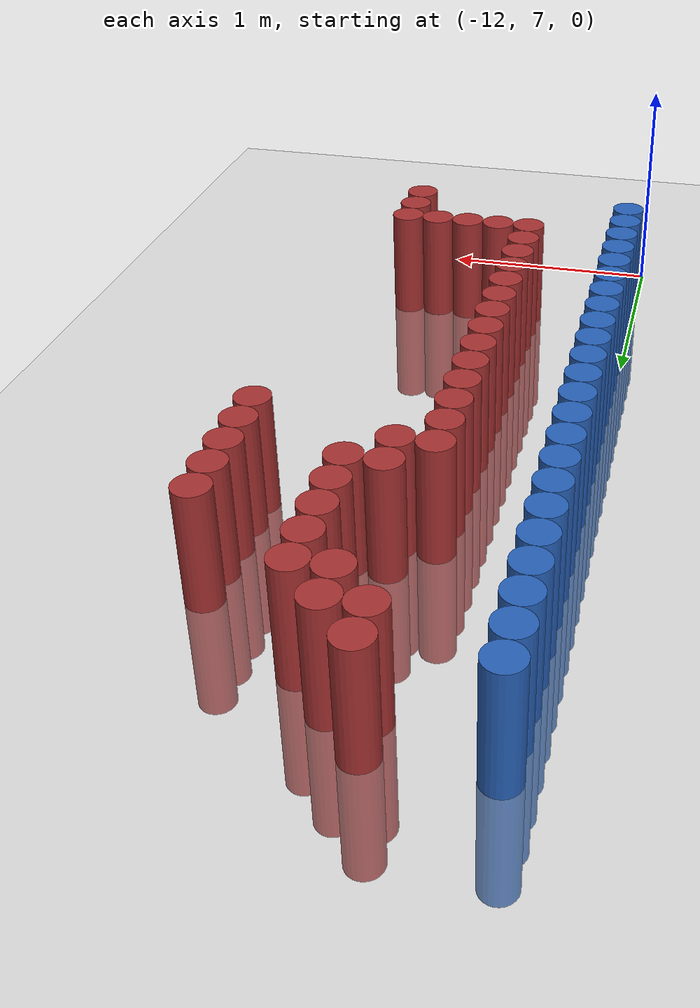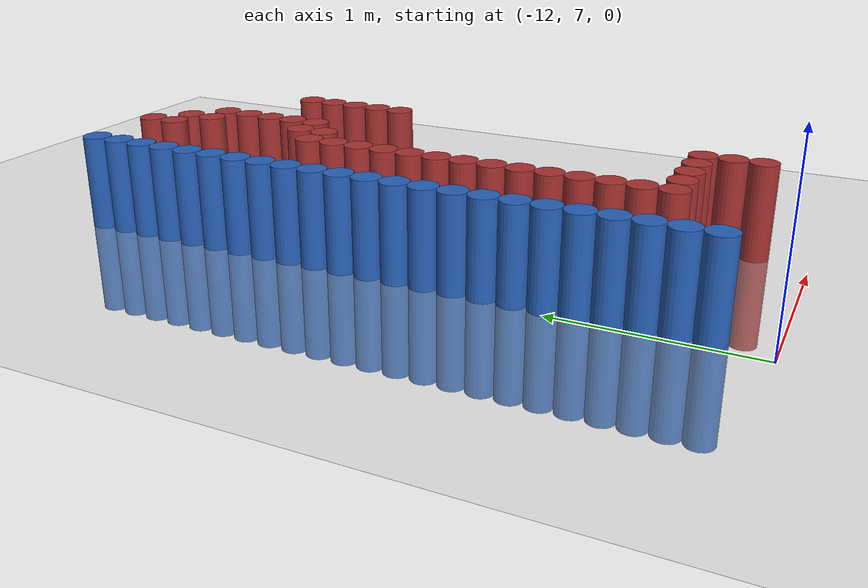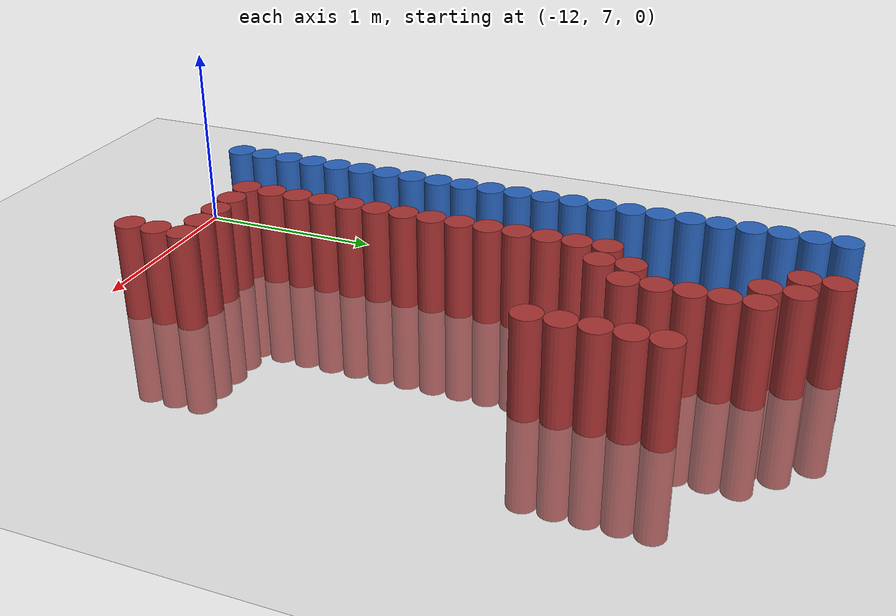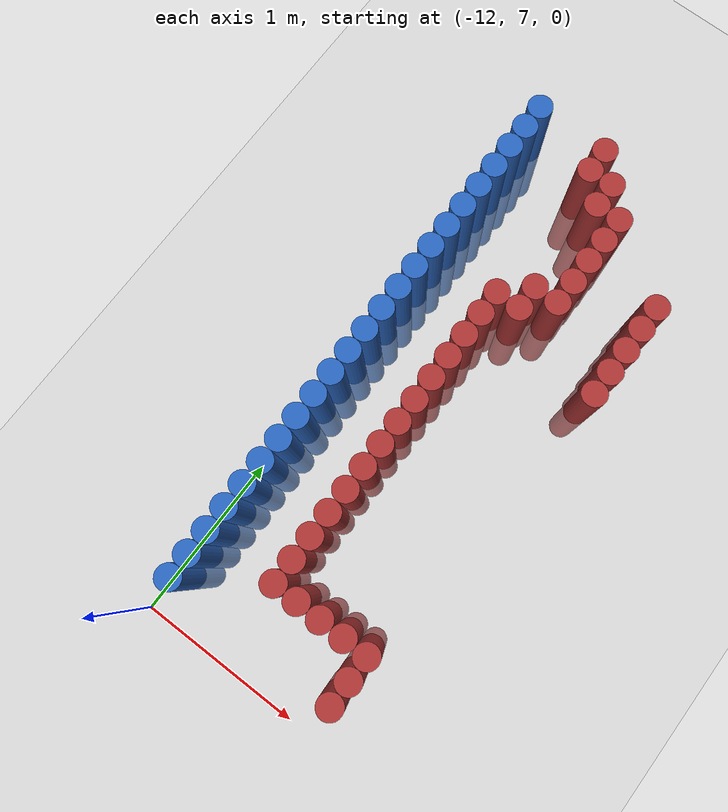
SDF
<sdf version="1.6">
 <world name="default">
  <model name="ground_plane">
   <static>1</static>
   <link name="link">
    <collision name="collision">
     <geometry><plane><normal>0 0 1</normal><size>100 100</size></plane></geometry>
     <surface><friction><ode><mu>100</mu><mu2>50</mu2></ode></friction></surface>
    </collision>
    <visual name="visual">
     <cast_shadows>0</cast_shadows>
     <geometry><plane><normal>0 0 1</normal><size>100 100</size></plane></geometry>
     <material>
      <script><uri>file://media/materials/scripts/gazebo.material</uri><name>Gazebo/Grey</name></script>
     </material>
    </visual>
   </link>
  </model>
  <model name="unit_cylinder_159">
   <static>1</static>
   <pose>-11.925 7.275 0 0 -0 0</pose>
   <link name="link">
    <inertial>
     <mass>1</mass>
     <inertia><ixx>0.145833</ixx><ixy>0</ixy><ixz>0</ixz><iyy>0.145833</iyy><iyz>0</iyz><izz>0.125</izz></inertia>
    </inertial>
    <collision name="collision">
     <geometry><cylinder><radius>0.075</radius><length>1</length></cylinder></geometry>
    </collision>
    <visual name="visual">
     <geometry><cylinder><radius>0.075</radius><length>1</length></cylinder></geometry>
     <material><ambient>0.152 0.379 0.72 1</ambient><diffuse>0.152 0.379 0.72 1</diffuse></material>
     <material>
      <script><name>Gazebo/Grey</name><uri>file://media/materials/scripts/gazebo.material</uri></script>
     </material>
    </visual>
   </link>
  </model>
  <model name="unit_cylinder_160">
   <static>1</static>
   <pose>-11.925 7.425 0 0 -0 0</pose>
   <link name="link">
    <inertial>
     <mass>1</mass>
     <inertia><ixx>0.145833</ixx><ixy>0</ixy><ixz>0</ixz><iyy>0.145833</iyy><iyz>0</iyz><izz>0.125</izz></inertia>
    </inertial>
    <collision name="collision">
     <geometry><cylinder><radius>0.075</radius><length>1</length></cylinder></geometry>
    </collision>
    <visual name="visual">
     <geometry><cylinder><radius>0.075</radius><length>1</length></cylinder></geometry>
     <material><ambient>0.152 0.379 0.72 1</ambient><diffuse>0.152 0.379 0.72 1</diffuse></material>
     <material>
      <script><name>Gazebo/Grey</name><uri>file://media/materials/scripts/gazebo.material</uri></script>
     </material>
    </visual>
   </link>
  </model>
  <model name="unit_cylinder_161">
   <static>1</static>
   <pose>-11.925 7.575 0 0 -0 0</pose>
   <link name="link">
    <inertial>
     <mass>1</mass>
     <inertia><ixx>0.145833</ixx><ixy>0</ixy><ixz>0</ixz><iyy>0.145833</iyy><iyz>0</iyz><izz>0.125</izz></inertia>
    </inertial>
    <collision name="collision">
     <geometry><cylinder><radius>0.075</radius><length>1</length></cylinder></geometry>
    </collision>
    <visual name="visual">
     <geometry><cylinder><radius>0.075</radius><length>1</length></cylinder></geometry>
     <material><ambient>0.152 0.379 0.72 1</ambient><diffuse>0.152 0.379 0.72 1</diffuse></material>
     <material>
      <script><name>Gazebo/Grey</name><uri>file://media/materials/scripts/gazebo.material</uri></script>
     </material>
    </visual>
   </link>
  </model>
  <model name="unit_cylinder_162">
   <static>1</static>
   <pose>-11.925 7.725 0 0 -0 0</pose>
   <link name="link">
    <inertial>
     <mass>1</mass>
     <inertia><ixx>0.145833</ixx><ixy>0</ixy><ixz>0</ixz><iyy>0.145833</iyy><iyz>0</iyz><izz>0.125</izz></inertia>
    </inertial>
    <collision name="collision">
     <geometry><cylinder><radius>0.075</radius><length>1</length></cylinder></geometry>
    </collision>
    <visual name="visual">
     <geometry><cylinder><radius>0.075</radius><length>1</length></cylinder></geometry>
     <material><ambient>0.152 0.379 0.72 1</ambient><diffuse>0.152 0.379 0.72 1</diffuse></material>
     <material>
      <script><name>Gazebo/Grey</name><uri>file://media/materials/scripts/gazebo.material</uri></script>
     </material>
    </visual>
   </link>
  </model>
  <model name="unit_cylinder_163">
   <static>1</static>
   <pose>-11.925 7.875 0 0 -0 0</pose>
   <link name="link">
    <inertial>
     <mass>1</mass>
     <inertia><ixx>0.145833</ixx><ixy>0</ixy><ixz>0</ixz><iyy>0.145833</iyy><iyz>0</iyz><izz>0.125</izz></inertia>
    </inertial>
    <collision name="collision">
     <geometry><cylinder><radius>0.075</radius><length>1</length></cylinder></geometry>
    </collision>
    <visual name="visual">
     <geometry><cylinder><radius>0.075</radius><length>1</length></cylinder></geometry>
     <material><ambient>0.152 0.379 0.72 1</ambient><diffuse>0.152 0.379 0.72 1</diffuse></material>
     <material>
      <script><name>Gazebo/Grey</name><uri>file://media/materials/scripts/gazebo.material</uri></script>
     </material>
    </visual>
   </link>
  </model>
  <model name="unit_cylinder_164">
   <static>1</static>
   <pose>-11.925 8.025 0 0 -0 0</pose>
   <link name="link">
    <inertial>
     <mass>1</mass>
     <inertia><ixx>0.145833</ixx><ixy>0</ixy><ixz>0</ixz><iyy>0.145833</iyy><iyz>0</iyz><izz>0.125</izz></inertia>
    </inertial>
    <collision name="collision">
     <geometry><cylinder><radius>0.075</radius><length>1</length></cylinder></geometry>
    </collision>
    <visual name="visual">
     <geometry><cylinder><radius>0.075</radius><length>1</length></cylinder></geometry>
     <material><ambient>0.152 0.379 0.72 1</ambient><diffuse>0.152 0.379 0.72 1</diffuse></material>
     <material>
      <script><name>Gazebo/Grey</name><uri>file://media/materials/scripts/gazebo.material</uri></script>
     </material>
    </visual>
   </link>
  </model>
  <model name="unit_cylinder_165">
   <static>1</static>
   <pose>-11.925 8.175 0 0 -0 0</pose>
   <link name="link">
    <inertial>
     <mass>1</mass>
     <inertia><ixx>0.145833</ixx><ixy>0</ixy><ixz>0</ixz><iyy>0.145833</iyy><iyz>0</iyz><izz>0.125</izz></inertia>
    </inertial>
    <collision name="collision">
     <geometry><cylinder><radius>0.075</radius><length>1</length></cylinder></geometry>
    </collision>
    <visual name="visual">
     <geometry><cylinder><radius>0.075</radius><length>1</length></cylinder></geometry>
     <material><ambient>0.152 0.379 0.72 1</ambient><diffuse>0.152 0.379 0.72 1</diffuse></material>
     <material>
      <script><name>Gazebo/Grey</name><uri>file://media/materials/scripts/gazebo.material</uri></script>
     </material>
    </visual>
   </link>
  </model>
  <model name="unit_cylinder_166">
   <static>1</static>
   <pose>-11.925 8.325 0 0 -0 0</pose>
   <link name="link">
    <inertial>
     <mass>1</mass>
     <inertia><ixx>0.145833</ixx><ixy>0</ixy><ixz>0</ixz><iyy>0.145833</iyy><iyz>0</iyz><izz>0.125</izz></inertia>
    </inertial>
    <collision name="collision">
     <geometry><cylinder><radius>0.075</radius><length>1</length></cylinder></geometry>
    </collision>
    <visual name="visual">
     <geometry><cylinder><radius>0.075</radius><length>1</length></cylinder></geometry>
     <material><ambient>0.152 0.379 0.72 1</ambient><diffuse>0.152 0.379 0.72 1</diffuse></material>
     <material>
      <script><name>Gazebo/Grey</name><uri>file://media/materials/scripts/gazebo.material</uri></script>
     </material>
    </visual>
   </link>
  </model>
  <model name="unit_cylinder_167">
   <static>1</static>
   <pose>-11.925 8.475 0 0 -0 0</pose>
   <link name="link">
    <inertial>
     <mass>1</mass>
     <inertia><ixx>0.145833</ixx><ixy>0</ixy><ixz>0</ixz><iyy>0.145833</iyy><iyz>0</iyz><izz>0.125</izz></inertia>
    </inertial>
    <collision name="collision">
     <geometry><cylinder><radius>0.075</radius><length>1</length></cylinder></geometry>
    </collision>
    <visual name="visual">
     <geometry><cylinder><radius>0.075</radius><length>1</length></cylinder></geometry>
     <material><ambient>0.152 0.379 0.72 1</ambient><diffuse>0.152 0.379 0.72 1</diffuse></material>
     <material>
      <script><name>Gazebo/Grey</name><uri>file://media/materials/scripts/gazebo.material</uri></script>
     </material>
    </visual>
   </link>
  </model>
  <model name="unit_cylinder_168">
   <static>1</static>
   <pose>-11.925 8.625 0 0 -0 0</pose>
   <link name="link">
    <inertial>
     <mass>1</mass>
     <inertia><ixx>0.145833</ixx><ixy>0</ixy><ixz>0</ixz><iyy>0.145833</iyy><iyz>0</iyz><izz>0.125</izz></inertia>
    </inertial>
    <collision name="collision">
     <geometry><cylinder><radius>0.075</radius><length>1</length></cylinder></geometry>
    </collision>
    <visual name="visual">
     <geometry><cylinder><radius>0.075</radius><length>1</length></cylinder></geometry>
     <material><ambient>0.152 0.379 0.72 1</ambient><diffuse>0.152 0.379 0.72 1</diffuse></material>
     <material>
      <script><name>Gazebo/Grey</name><uri>file://media/materials/scripts/gazebo.material</uri></script>
     </material>
    </visual>
   </link>
  </model>
  <model name="unit_cylinder_169">
   <static>1</static>
   <pose>-11.925 8.775 0 0 -0 0</pose>
   <link name="link">
    <inertial>
     <mass>1</mass>
     <inertia><ixx>0.145833</ixx><ixy>0</ixy><ixz>0</ixz><iyy>0.145833</iyy><iyz>0</iyz><izz>0.125</izz></inertia>
    </inertial>
    <collision name="collision">
     <geometry><cylinder><radius>0.075</radius><length>1</length></cylinder></geometry>
    </collision>
    <visual name="visual">
     <geometry><cylinder><radius>0.075</radius><length>1</length></cylinder></geometry>
     <material><ambient>0.152 0.379 0.72 1</ambient><diffuse>0.152 0.379 0.72 1</diffuse></material>
     <material>
      <script><name>Gazebo/Grey</name><uri>file://media/materials/scripts/gazebo.material</uri></script>
     </material>
    </visual>
   </link>
  </model>
  <model name="unit_cylinder_170">
   <static>1</static>
   <pose>-11.925 8.925 0 0 -0 0</pose>
   <link name="link">
    <inertial>
     <mass>1</mass>
     <inertia><ixx>0.145833</ixx><ixy>0</ixy><ixz>0</ixz><iyy>0.145833</iyy><iyz>0</iyz><izz>0.125</izz></inertia>
    </inertial>
    <collision name="collision">
     <geometry><cylinder><radius>0.075</radius><length>1</length></cylinder></geometry>
    </collision>
    <visual name="visual">
     <geometry><cylinder><radius>0.075</radius><length>1</length></cylinder></geometry>
     <material><ambient>0.152 0.379 0.72 1</ambient><diffuse>0.152 0.379 0.72 1</diffuse></material>
     <material>
      <script><name>Gazebo/Grey</name><uri>file://media/materials/scripts/gazebo.material</uri></script>
     </material>
    </visual>
   </link>
  </model>
  <model name="unit_cylinder_171">
   <static>1</static>
   <pose>-11.925 9.075 0 0 -0 0</pose>
   <link name="link">
    <inertial>
     <mass>1</mass>
     <inertia><ixx>0.145833</ixx><ixy>0</ixy><ixz>0</ixz><iyy>0.145833</iyy><iyz>0</iyz><izz>0.125</izz></inertia>
    </inertial>
    <collision name="collision">
     <geometry><cylinder><radius>0.075</radius><length>1</length></cylinder></geometry>
    </collision>
    <visual name="visual">
     <geometry><cylinder><radius>0.075</radius><length>1</length></cylinder></geometry>
     <material><ambient>0.152 0.379 0.72 1</ambient><diffuse>0.152 0.379 0.72 1</diffuse></material>
     <material>
      <script><name>Gazebo/Grey</name><uri>file://media/materials/scripts/gazebo.material</uri></script>
     </material>
    </visual>
   </link>
  </model>
  <model name="unit_cylinder_172">
   <static>1</static>
   <pose>-11.925 9.225 0 0 -0 0</pose>
   <link name="link">
    <inertial>
     <mass>1</mass>
     <inertia><ixx>0.145833</ixx><ixy>0</ixy><ixz>0</ixz><iyy>0.145833</iyy><iyz>0</iyz><izz>0.125</izz></inertia>
    </inertial>
    <collision name="collision">
     <geometry><cylinder><radius>0.075</radius><length>1</length></cylinder></geometry>
    </collision>
    <visual name="visual">
     <geometry><cylinder><radius>0.075</radius><length>1</length></cylinder></geometry>
     <material><ambient>0.152 0.379 0.72 1</ambient><diffuse>0.152 0.379 0.72 1</diffuse></material>
     <material>
      <script><name>Gazebo/Grey</name><uri>file://media/materials/scripts/gazebo.material</uri></script>
     </material>
    </visual>
   </link>
  </model>
  <model name="unit_cylinder_173">
   <static>1</static>
   <pose>-11.925 9.375 0 0 -0 0</pose>
   <link name="link">
    <inertial>
     <mass>1</mass>
     <inertia><ixx>0.145833</ixx><ixy>0</ixy><ixz>0</ixz><iyy>0.145833</iyy><iyz>0</iyz><izz>0.125</izz></inertia>
    </inertial>
    <collision name="collision">
     <geometry><cylinder><radius>0.075</radius><length>1</length></cylinder></geometry>
    </collision>
    <visual name="visual">
     <geometry><cylinder><radius>0.075</radius><length>1</length></cylinder></geometry>
     <material><ambient>0.152 0.379 0.72 1</ambient><diffuse>0.152 0.379 0.72 1</diffuse></material>
     <material>
      <script><name>Gazebo/Grey</name><uri>file://media/materials/scripts/gazebo.material</uri></script>
     </material>
    </visual>
   </link>
  </model>
  <model name="unit_cylinder_174">
   <static>1</static>
   <pose>-11.925 9.525 0 0 -0 0</pose>
   <link name="link">
    <inertial>
     <mass>1</mass>
     <inertia><ixx>0.145833</ixx><ixy>0</ixy><ixz>0</ixz><iyy>0.145833</iyy><iyz>0</iyz><izz>0.125</izz></inertia>
    </inertial>
    <collision name="collision">
     <geometry><cylinder><radius>0.075</radius><length>1</length></cylinder></geometry>
    </collision>
    <visual name="visual">
     <geometry><cylinder><radius>0.075</radius><length>1</length></cylinder></geometry>
     <material><ambient>0.152 0.379 0.72 1</ambient><diffuse>0.152 0.379 0.72 1</diffuse></material>
     <material>
      <script><name>Gazebo/Grey</name><uri>file://media/materials/scripts/gazebo.material</uri></script>
     </material>
    </visual>
   </link>
  </model>
  <model name="unit_cylinder_175">
   <static>1</static>
   <pose>-11.925 9.675 0 0 -0 0</pose>
   <link name="link">
    <inertial>
     <mass>1</mass>
     <inertia><ixx>0.145833</ixx><ixy>0</ixy><ixz>0</ixz><iyy>0.145833</iyy><iyz>0</iyz><izz>0.125</izz></inertia>
    </inertial>
    <collision name="collision">
     <geometry><cylinder><radius>0.075</radius><length>1</length></cylinder></geometry>
    </collision>
    <visual name="visual">
     <geometry><cylinder><radius>0.075</radius><length>1</length></cylinder></geometry>
     <material><ambient>0.152 0.379 0.72 1</ambient><diffuse>0.152 0.379 0.72 1</diffuse></material>
     <material>
      <script><name>Gazebo/Grey</name><uri>file://media/materials/scripts/gazebo.material</uri></script>
     </material>
    </visual>
   </link>
  </model>
  <model name="unit_cylinder_176">
   <static>1</static>
   <pose>-11.925 9.825 0 0 -0 0</pose>
   <link name="link">
    <inertial>
     <mass>1</mass>
     <inertia><ixx>0.145833</ixx><ixy>0</ixy><ixz>0</ixz><iyy>0.145833</iyy><iyz>0</iyz><izz>0.125</izz></inertia>
    </inertial>
    <collision name="collision">
     <geometry><cylinder><radius>0.075</radius><length>1</length></cylinder></geometry>
    </collision>
    <visual name="visual">
     <geometry><cylinder><radius>0.075</radius><length>1</length></cylinder></geometry>
     <material><ambient>0.152 0.379 0.72 1</ambient><diffuse>0.152 0.379 0.72 1</diffuse></material>
     <material>
      <script><name>Gazebo/Grey</name><uri>file://media/materials/scripts/gazebo.material</uri></script>
     </material>
    </visual>
   </link>
  </model>
  <model name="unit_cylinder_177">
   <static>1</static>
   <pose>-11.925 9.975 0 0 -0 0</pose>
   <link name="link">
    <inertial>
     <mass>1</mass>
     <inertia><ixx>0.145833</ixx><ixy>0</ixy><ixz>0</ixz><iyy>0.145833</iyy><iyz>0</iyz><izz>0.125</izz></inertia>
    </inertial>
    <collision name="collision">
     <geometry><cylinder><radius>0.075</radius><length>1</length></cylinder></geometry>
    </collision>
    <visual name="visual">
     <geometry><cylinder><radius>0.075</radius><length>1</length></cylinder></geometry>
     <material><ambient>0.152 0.379 0.72 1</ambient><diffuse>0.152 0.379 0.72 1</diffuse></material>
     <material>
      <script><name>Gazebo/Grey</name><uri>file://media/materials/scripts/gazebo.material</uri></script>
     </material>
    </visual>
   </link>
  </model>
  <model name="unit_cylinder_178">
   <static>1</static>
   <pose>-11.925 10.125 0 0 -0 0</pose>
   <link name="link">
    <inertial>
     <mass>1</mass>
     <inertia><ixx>0.145833</ixx><ixy>0</ixy><ixz>0</ixz><iyy>0.145833</iyy><iyz>0</iyz><izz>0.125</izz></inertia>
    </inertial>
    <collision name="collision">
     <geometry><cylinder><radius>0.075</radius><length>1</length></cylinder></geometry>
    </collision>
    <visual name="visual">
     <geometry><cylinder><radius>0.075</radius><length>1</length></cylinder></geometry>
     <material><ambient>0.152 0.379 0.72 1</ambient><diffuse>0.152 0.379 0.72 1</diffuse></material>
     <material>
      <script><name>Gazebo/Grey</name><uri>file://media/materials/scripts/gazebo.material</uri></script>
     </material>
    </visual>
   </link>
  </model>
  <model name="unit_cylinder_179">
   <static>1</static>
   <pose>-11.925 10.275 0 0 -0 0</pose>
   <link name="link">
    <inertial>
     <mass>1</mass>
     <inertia><ixx>0.145833</ixx><ixy>0</ixy><ixz>0</ixz><iyy>0.145833</iyy><iyz>0</iyz><izz>0.125</izz></inertia>
    </inertial>
    <collision name="collision">
     <geometry><cylinder><radius>0.075</radius><length>1</length></cylinder></geometry>
    </collision>
    <visual name="visual">
     <geometry><cylinder><radius>0.075</radius><length>1</length></cylinder></geometry>
     <material><ambient>0.152 0.379 0.72 1</ambient><diffuse>0.152 0.379 0.72 1</diffuse></material>
     <material>
      <script><name>Gazebo/Grey</name><uri>file://media/materials/scripts/gazebo.material</uri></script>
     </material>
    </visual>
   </link>
  </model>
  <model name="unit_cylinder_180">
   <static>1</static>
   <pose>-11.925 10.425 0 0 -0 0</pose>
   <link name="link">
    <inertial>
     <mass>1</mass>
     <inertia><ixx>0.145833</ixx><ixy>0</ixy><ixz>0</ixz><iyy>0.145833</iyy><iyz>0</iyz><izz>0.125</izz></inertia>
    </inertial>
    <collision name="collision">
     <geometry><cylinder><radius>0.075</radius><length>1</length></cylinder></geometry>
    </collision>
    <visual name="visual">
     <geometry><cylinder><radius>0.075</radius><length>1</length></cylinder></geometry>
     <material><ambient>0.152 0.379 0.72 1</ambient><diffuse>0.152 0.379 0.72 1</diffuse></material>
     <material>
      <script><name>Gazebo/Grey</name><uri>file://media/materials/scripts/gazebo.material</uri></script>
     </material>
    </visual>
   </link>
  </model>
  <model name="unit_cylinder_181">
   <static>1</static>
   <pose>-11.925 10.575 0 0 -0 0</pose>
   <link name="link">
    <inertial>
     <mass>1</mass>
     <inertia><ixx>0.145833</ixx><ixy>0</ixy><ixz>0</ixz><iyy>0.145833</iyy><iyz>0</iyz><izz>0.125</izz></inertia>
    </inertial>
    <collision name="collision">
     <geometry><cylinder><radius>0.075</radius><length>1</length></cylinder></geometry>
    </collision>
    <visual name="visual">
     <geometry><cylinder><radius>0.075</radius><length>1</length></cylinder></geometry>
     <material><ambient>0.152 0.379 0.72 1</ambient><diffuse>0.152 0.379 0.72 1</diffuse></material>
     <material>
      <script><name>Gazebo/Grey</name><uri>file://media/materials/scripts/gazebo.material</uri></script>
     </material>
    </visual>
   </link>
  </model>
  <model name="unit_cylinder_250">
   <static>1</static>
   <pose>-11.475 7.575 0 0 -0 0</pose>
   <link name="link">
    <inertial>
     <mass>1</mass>
     <inertia><ixx>0.145833</ixx><ixy>0</ixy><ixz>0</ixz><iyy>0.145833</iyy><iyz>0</iyz><izz>0.125</izz></inertia>
    </inertial>
    <collision name="collision">
     <geometry><cylinder><radius>0.075</radius><length>1</length></cylinder></geometry>
    </collision>
    <visual name="visual">
     <geometry><cylinder><radius>0.075</radius><length>1</length></cylinder></geometry>
     <material><ambient>0.648 0.192 0.192 1</ambient><diffuse>0.648 0.192 0.192 1</diffuse></material>
     <material>
      <script><name>Gazebo/Grey</name><uri>file://media/materials/scripts/gazebo.material</uri></script>
     </material>
    </visual>
   </link>
  </model>
  <model name="unit_cylinder_251">
   <static>1</static>
   <pose>-11.475 7.725 0 0 -0 0</pose>
   <link name="link">
    <inertial>
     <mass>1</mass>
     <inertia><ixx>0.145833</ixx><ixy>0</ixy><ixz>0</ixz><iyy>0.145833</iyy><iyz>0</iyz><izz>0.125</izz></inertia>
    </inertial>
    <collision name="collision">
     <geometry><cylinder><radius>0.075</radius><length>1</length></cylinder></geometry>
    </collision>
    <visual name="visual">
     <geometry><cylinder><radius>0.075</radius><length>1</length></cylinder></geometry>
     <material><ambient>0.648 0.192 0.192 1</ambient><diffuse>0.648 0.192 0.192 1</diffuse></material>
     <material>
      <script><name>Gazebo/Grey</name><uri>file://media/materials/scripts/gazebo.material</uri></script>
     </material>
    </visual>
   </link>
  </model>
  <model name="unit_cylinder_252">
   <static>1</static>
   <pose>-11.475 7.875 0 0 -0 0</pose>
   <link name="link">
    <inertial>
     <mass>1</mass>
     <inertia><ixx>0.145833</ixx><ixy>0</ixy><ixz>0</ixz><iyy>0.145833</iyy><iyz>0</iyz><izz>0.125</izz></inertia>
    </inertial>
    <collision name="collision">
     <geometry><cylinder><radius>0.075</radius><length>1</length></cylinder></geometry>
    </collision>
    <visual name="visual">
     <geometry><cylinder><radius>0.075</radius><length>1</length></cylinder></geometry>
     <material><ambient>0.648 0.192 0.192 1</ambient><diffuse>0.648 0.192 0.192 1</diffuse></material>
     <material>
      <script><name>Gazebo/Grey</name><uri>file://media/materials/scripts/gazebo.material</uri></script>
     </material>
    </visual>
   </link>
  </model>
  <model name="unit_cylinder_253">
   <static>1</static>
   <pose>-11.475 8.025 0 0 -0 0</pose>
   <link name="link">
    <inertial>
     <mass>1</mass>
     <inertia><ixx>0.145833</ixx><ixy>0</ixy><ixz>0</ixz><iyy>0.145833</iyy><iyz>0</iyz><izz>0.125</izz></inertia>
    </inertial>
    <collision name="collision">
     <geometry><cylinder><radius>0.075</radius><length>1</length></cylinder></geometry>
    </collision>
    <visual name="visual">
     <geometry><cylinder><radius>0.075</radius><length>1</length></cylinder></geometry>
     <material><ambient>0.648 0.192 0.192 1</ambient><diffuse>0.648 0.192 0.192 1</diffuse></material>
     <material>
      <script><name>Gazebo/Grey</name><uri>file://media/materials/scripts/gazebo.material</uri></script>
     </material>
    </visual>
   </link>
  </model>
  <model name="unit_cylinder_254">
   <static>1</static>
   <pose>-11.475 8.175 0 0 -0 0</pose>
   <link name="link">
    <inertial>
     <mass>1</mass>
     <inertia><ixx>0.145833</ixx><ixy>0</ixy><ixz>0</ixz><iyy>0.145833</iyy><iyz>0</iyz><izz>0.125</izz></inertia>
    </inertial>
    <collision name="collision">
     <geometry><cylinder><radius>0.075</radius><length>1</length></cylinder></geometry>
    </collision>
    <visual name="visual">
     <geometry><cylinder><radius>0.075</radius><length>1</length></cylinder></geometry>
     <material><ambient>0.648 0.192 0.192 1</ambient><diffuse>0.648 0.192 0.192 1</diffuse></material>
     <material>
      <script><name>Gazebo/Grey</name><uri>file://media/materials/scripts/gazebo.material</uri></script>
     </material>
    </visual>
   </link>
  </model>
  <model name="unit_cylinder_255">
   <static>1</static>
   <pose>-11.475 8.325 0 0 -0 0</pose>
   <link name="link">
    <inertial>
     <mass>1</mass>
     <inertia><ixx>0.145833</ixx><ixy>0</ixy><ixz>0</ixz><iyy>0.145833</iyy><iyz>0</iyz><izz>0.125</izz></inertia>
    </inertial>
    <collision name="collision">
     <geometry><cylinder><radius>0.075</radius><length>1</length></cylinder></geometry>
    </collision>
    <visual name="visual">
     <geometry><cylinder><radius>0.075</radius><length>1</length></cylinder></geometry>
     <material><ambient>0.648 0.192 0.192 1</ambient><diffuse>0.648 0.192 0.192 1</diffuse></material>
     <material>
      <script><name>Gazebo/Grey</name><uri>file://media/materials/scripts/gazebo.material</uri></script>
     </material>
    </visual>
   </link>
  </model>
  <model name="unit_cylinder_256">
   <static>1</static>
   <pose>-11.475 8.475 0 0 -0 0</pose>
   <link name="link">
    <inertial>
     <mass>1</mass>
     <inertia><ixx>0.145833</ixx><ixy>0</ixy><ixz>0</ixz><iyy>0.145833</iyy><iyz>0</iyz><izz>0.125</izz></inertia>
    </inertial>
    <collision name="collision">
     <geometry><cylinder><radius>0.075</radius><length>1</length></cylinder></geometry>
    </collision>
    <visual name="visual">
     <geometry><cylinder><radius>0.075</radius><length>1</length></cylinder></geometry>
     <material><ambient>0.648 0.192 0.192 1</ambient><diffuse>0.648 0.192 0.192 1</diffuse></material>
     <material>
      <script><name>Gazebo/Grey</name><uri>file://media/materials/scripts/gazebo.material</uri></script>
     </material>
    </visual>
   </link>
  </model>
  <model name="unit_cylinder_257">
   <static>1</static>
   <pose>-11.475 8.625 0 0 -0 0</pose>
   <link name="link">
    <inertial>
     <mass>1</mass>
     <inertia><ixx>0.145833</ixx><ixy>0</ixy><ixz>0</ixz><iyy>0.145833</iyy><iyz>0</iyz><izz>0.125</izz></inertia>
    </inertial>
    <collision name="collision">
     <geometry><cylinder><radius>0.075</radius><length>1</length></cylinder></geometry>
    </collision>
    <visual name="visual">
     <geometry><cylinder><radius>0.075</radius><length>1</length></cylinder></geometry>
     <material><ambient>0.648 0.192 0.192 1</ambient><diffuse>0.648 0.192 0.192 1</diffuse></material>
     <material>
      <script><name>Gazebo/Grey</name><uri>file://media/materials/scripts/gazebo.material</uri></script>
     </material>
    </visual>
   </link>
  </model>
  <model name="unit_cylinder_258">
   <static>1</static>
   <pose>-11.475 8.775 0 0 -0 0</pose>
   <link name="link">
    <inertial>
     <mass>1</mass>
     <inertia><ixx>0.145833</ixx><ixy>0</ixy><ixz>0</ixz><iyy>0.145833</iyy><iyz>0</iyz><izz>0.125</izz></inertia>
    </inertial>
    <collision name="collision">
     <geometry><cylinder><radius>0.075</radius><length>1</length></cylinder></geometry>
    </collision>
    <visual name="visual">
     <geometry><cylinder><radius>0.075</radius><length>1</length></cylinder></geometry>
     <material><ambient>0.648 0.192 0.192 1</ambient><diffuse>0.648 0.192 0.192 1</diffuse></material>
     <material>
      <script><name>Gazebo/Grey</name><uri>file://media/materials/scripts/gazebo.material</uri></script>
     </material>
    </visual>
   </link>
  </model>
  <model name="unit_cylinder_259">
   <static>1</static>
   <pose>-11.475 8.925 0 0 -0 0</pose>
   <link name="link">
    <inertial>
     <mass>1</mass>
     <inertia><ixx>0.145833</ixx><ixy>0</ixy><ixz>0</ixz><iyy>0.145833</iyy><iyz>0</iyz><izz>0.125</izz></inertia>
    </inertial>
    <collision name="collision">
     <geometry><cylinder><radius>0.075</radius><length>1</length></cylinder></geometry>
    </collision>
    <visual name="visual">
     <geometry><cylinder><radius>0.075</radius><length>1</length></cylinder></geometry>
     <material><ambient>0.648 0.192 0.192 1</ambient><diffuse>0.648 0.192 0.192 1</diffuse></material>
     <material>
      <script><name>Gazebo/Grey</name><uri>file://media/materials/scripts/gazebo.material</uri></script>
     </material>
    </visual>
   </link>
  </model>
  <model name="unit_cylinder_260">
   <static>1</static>
   <pose>-11.475 9.075 0 0 -0 0</pose>
   <link name="link">
    <inertial>
     <mass>1</mass>
     <inertia><ixx>0.145833</ixx><ixy>0</ixy><ixz>0</ixz><iyy>0.145833</iyy><iyz>0</iyz><izz>0.125</izz></inertia>
    </inertial>
    <collision name="collision">
     <geometry><cylinder><radius>0.075</radius><length>1</length></cylinder></geometry>
    </collision>
    <visual name="visual">
     <geometry><cylinder><radius>0.075</radius><length>1</length></cylinder></geometry>
     <material><ambient>0.648 0.192 0.192 1</ambient><diffuse>0.648 0.192 0.192 1</diffuse></material>
     <material>
      <script><name>Gazebo/Grey</name><uri>file://media/materials/scripts/gazebo.material</uri></script>
     </material>
    </visual>
   </link>
  </model>
  <model name="unit_cylinder_261">
   <static>1</static>
   <pose>-11.475 9.225 0 0 -0 0</pose>
   <link name="link">
    <inertial>
     <mass>1</mass>
     <inertia><ixx>0.145833</ixx><ixy>0</ixy><ixz>0</ixz><iyy>0.145833</iyy><iyz>0</iyz><izz>0.125</izz></inertia>
    </inertial>
    <collision name="collision">
     <geometry><cylinder><radius>0.075</radius><length>1</length></cylinder></geometry>
    </collision>
    <visual name="visual">
     <geometry><cylinder><radius>0.075</radius><length>1</length></cylinder></geometry>
     <material><ambient>0.648 0.192 0.192 1</ambient><diffuse>0.648 0.192 0.192 1</diffuse></material>
     <material>
      <script><name>Gazebo/Grey</name><uri>file://media/materials/scripts/gazebo.material</uri></script>
     </material>
    </visual>
   </link>
  </model>
  <model name="unit_cylinder_262">
   <static>1</static>
   <pose>-11.475 9.375 0 0 -0 0</pose>
   <link name="link">
    <inertial>
     <mass>1</mass>
     <inertia><ixx>0.145833</ixx><ixy>0</ixy><ixz>0</ixz><iyy>0.145833</iyy><iyz>0</iyz><izz>0.125</izz></inertia>
    </inertial>
    <collision name="collision">
     <geometry><cylinder><radius>0.075</radius><length>1</length></cylinder></geometry>
    </collision>
    <visual name="visual">
     <geometry><cylinder><radius>0.075</radius><length>1</length></cylinder></geometry>
     <material><ambient>0.648 0.192 0.192 1</ambient><diffuse>0.648 0.192 0.192 1</diffuse></material>
     <material>
      <script><name>Gazebo/Grey</name><uri>file://media/materials/scripts/gazebo.material</uri></script>
     </material>
    </visual>
   </link>
  </model>
  <model name="unit_cylinder_263">
   <static>1</static>
   <pose>-11.475 9.525 0 0 -0 0</pose>
   <link name="link">
    <inertial>
     <mass>1</mass>
     <inertia><ixx>0.145833</ixx><ixy>0</ixy><ixz>0</ixz><iyy>0.145833</iyy><iyz>0</iyz><izz>0.125</izz></inertia>
    </inertial>
    <collision name="collision">
     <geometry><cylinder><radius>0.075</radius><length>1</length></cylinder></geometry>
    </collision>
    <visual name="visual">
     <geometry><cylinder><radius>0.075</radius><length>1</length></cylinder></geometry>
     <material><ambient>0.648 0.192 0.192 1</ambient><diffuse>0.648 0.192 0.192 1</diffuse></material>
     <material>
      <script><name>Gazebo/Grey</name><uri>file://media/materials/scripts/gazebo.material</uri></script>
     </material>
    </visual>
   </link>
  </model>
  <model name="unit_cylinder_264">
   <static>1</static>
   <pose>-11.475 10.425 0 0 -0 0</pose>
   <link name="link">
    <inertial>
     <mass>1</mass>
     <inertia><ixx>0.145833</ixx><ixy>0</ixy><ixz>0</ixz><iyy>0.145833</iyy><iyz>0</iyz><izz>0.125</izz></inertia>
    </inertial>
    <collision name="collision">
     <geometry><cylinder><radius>0.075</radius><length>1</length></cylinder></geometry>
    </collision>
    <visual name="visual">
     <geometry><cylinder><radius>0.075</radius><length>1</length></cylinder></geometry>
     <material><ambient>0.648 0.192 0.192 1</ambient><diffuse>0.648 0.192 0.192 1</diffuse></material>
     <material>
      <script><name>Gazebo/Grey</name><uri>file://media/materials/scripts/gazebo.material</uri></script>
     </material>
    </visual>
   </link>
  </model>
  <model name="unit_cylinder_265">
   <static>1</static>
   <pose>-11.475 10.575 0 0 -0 0</pose>
   <link name="link">
    <inertial>
     <mass>1</mass>
     <inertia><ixx>0.145833</ixx><ixy>0</ixy><ixz>0</ixz><iyy>0.145833</iyy><iyz>0</iyz><izz>0.125</izz></inertia>
    </inertial>
    <collision name="collision">
     <geometry><cylinder><radius>0.075</radius><length>1</length></cylinder></geometry>
    </collision>
    <visual name="visual">
     <geometry><cylinder><radius>0.075</radius><length>1</length></cylinder></geometry>
     <material><ambient>0.648 0.192 0.192 1</ambient><diffuse>0.648 0.192 0.192 1</diffuse></material>
     <material>
      <script><name>Gazebo/Grey</name><uri>file://media/materials/scripts/gazebo.material</uri></script>
     </material>
    </visual>
   </link>
  </model>
  <model name="unit_cylinder_279">
   <static>1</static>
   <pose>-11.325 7.575 0 0 -0 0</pose>
   <link name="link">
    <inertial>
     <mass>1</mass>
     <inertia><ixx>0.145833</ixx><ixy>0</ixy><ixz>0</ixz><iyy>0.145833</iyy><iyz>0</iyz><izz>0.125</izz></inertia>
    </inertial>
    <collision name="collision">
     <geometry><cylinder><radius>0.075</radius><length>1</length></cylinder></geometry>
    </collision>
    <visual name="visual">
     <geometry><cylinder><radius>0.075</radius><length>1</length></cylinder></geometry>
     <material><ambient>0.648 0.192 0.192 1</ambient><diffuse>0.648 0.192 0.192 1</diffuse></material>
     <material>
      <script><name>Gazebo/Grey</name><uri>file://media/materials/scripts/gazebo.material</uri></script>
     </material>
    </visual>
   </link>
  </model>
  <model name="unit_cylinder_280">
   <static>1</static>
   <pose>-11.325 9.525 0 0 -0 0</pose>
   <link name="link">
    <inertial>
     <mass>1</mass>
     <inertia><ixx>0.145833</ixx><ixy>0</ixy><ixz>0</ixz><iyy>0.145833</iyy><iyz>0</iyz><izz>0.125</izz></inertia>
    </inertial>
    <collision name="collision">
     <geometry><cylinder><radius>0.075</radius><length>1</length></cylinder></geometry>
    </collision>
    <visual name="visual">
     <geometry><cylinder><radius>0.075</radius><length>1</length></cylinder></geometry>
     <material><ambient>0.648 0.192 0.192 1</ambient><diffuse>0.648 0.192 0.192 1</diffuse></material>
     <material>
      <script><name>Gazebo/Grey</name><uri>file://media/materials/scripts/gazebo.material</uri></script>
     </material>
    </visual>
   </link>
  </model>
  <model name="unit_cylinder_281">
   <static>1</static>
   <pose>-11.325 9.675 0 0 -0 0</pose>
   <link name="link">
    <inertial>
     <mass>1</mass>
     <inertia><ixx>0.145833</ixx><ixy>0</ixy><ixz>0</ixz><iyy>0.145833</iyy><iyz>0</iyz><izz>0.125</izz></inertia>
    </inertial>
    <collision name="collision">
     <geometry><cylinder><radius>0.075</radius><length>1</length></cylinder></geometry>
    </collision>
    <visual name="visual">
     <geometry><cylinder><radius>0.075</radius><length>1</length></cylinder></geometry>
     <material><ambient>0.648 0.192 0.192 1</ambient><diffuse>0.648 0.192 0.192 1</diffuse></material>
     <material>
      <script><name>Gazebo/Grey</name><uri>file://media/materials/scripts/gazebo.material</uri></script>
     </material>
    </visual>
   </link>
  </model>
  <model name="unit_cylinder_282">
   <static>1</static>
   <pose>-11.325 10.275 0 0 -0 0</pose>
   <link name="link">
    <inertial>
     <mass>1</mass>
     <inertia><ixx>0.145833</ixx><ixy>0</ixy><ixz>0</ixz><iyy>0.145833</iyy><iyz>0</iyz><izz>0.125</izz></inertia>
    </inertial>
    <collision name="collision">
     <geometry><cylinder><radius>0.075</radius><length>1</length></cylinder></geometry>
    </collision>
    <visual name="visual">
     <geometry><cylinder><radius>0.075</radius><length>1</length></cylinder></geometry>
     <material><ambient>0.648 0.192 0.192 1</ambient><diffuse>0.648 0.192 0.192 1</diffuse></material>
     <material>
      <script><name>Gazebo/Grey</name><uri>file://media/materials/scripts/gazebo.material</uri></script>
     </material>
    </visual>
   </link>
  </model>
  <model name="unit_cylinder_283">
   <static>1</static>
   <pose>-11.325 10.425 0 0 -0 0</pose>
   <link name="link">
    <inertial>
     <mass>1</mass>
     <inertia><ixx>0.145833</ixx><ixy>0</ixy><ixz>0</ixz><iyy>0.145833</iyy><iyz>0</iyz><izz>0.125</izz></inertia>
    </inertial>
    <collision name="collision">
     <geometry><cylinder><radius>0.075</radius><length>1</length></cylinder></geometry>
    </collision>
    <visual name="visual">
     <geometry><cylinder><radius>0.075</radius><length>1</length></cylinder></geometry>
     <material><ambient>0.648 0.192 0.192 1</ambient><diffuse>0.648 0.192 0.192 1</diffuse></material>
     <material>
      <script><name>Gazebo/Grey</name><uri>file://media/materials/scripts/gazebo.material</uri></script>
     </material>
    </visual>
   </link>
  </model>
  <model name="unit_cylinder_294">
   <static>1</static>
   <pose>-11.175 7.575 0 0 -0 0</pose>
   <link name="link">
    <inertial>
     <mass>1</mass>
     <inertia><ixx>0.145833</ixx><ixy>0</ixy><ixz>0</ixz><iyy>0.145833</iyy><iyz>0</iyz><izz>0.125</izz></inertia>
    </inertial>
    <collision name="collision">
     <geometry><cylinder><radius>0.075</radius><length>1</length></cylinder></geometry>
    </collision>
    <visual name="visual">
     <geometry><cylinder><radius>0.075</radius><length>1</length></cylinder></geometry>
     <material><ambient>0.648 0.192 0.192 1</ambient><diffuse>0.648 0.192 0.192 1</diffuse></material>
     <material>
      <script><name>Gazebo/Grey</name><uri>file://media/materials/scripts/gazebo.material</uri></script>
     </material>
    </visual>
   </link>
  </model>
  <model name="unit_cylinder_295">
   <static>1</static>
   <pose>-11.175 9.675 0 0 -0 0</pose>
   <link name="link">
    <inertial>
     <mass>1</mass>
     <inertia><ixx>0.145833</ixx><ixy>0</ixy><ixz>0</ixz><iyy>0.145833</iyy><iyz>0</iyz><izz>0.125</izz></inertia>
    </inertial>
    <collision name="collision">
     <geometry><cylinder><radius>0.075</radius><length>1</length></cylinder></geometry>
    </collision>
    <visual name="visual">
     <geometry><cylinder><radius>0.075</radius><length>1</length></cylinder></geometry>
     <material><ambient>0.648 0.192 0.192 1</ambient><diffuse>0.648 0.192 0.192 1</diffuse></material>
     <material>
      <script><name>Gazebo/Grey</name><uri>file://media/materials/scripts/gazebo.material</uri></script>
     </material>
    </visual>
   </link>
  </model>
  <model name="unit_cylinder_296">
   <static>1</static>
   <pose>-11.175 9.825 0 0 -0 0</pose>
   <link name="link">
    <inertial>
     <mass>1</mass>
     <inertia><ixx>0.145833</ixx><ixy>0</ixy><ixz>0</ixz><iyy>0.145833</iyy><iyz>0</iyz><izz>0.125</izz></inertia>
    </inertial>
    <collision name="collision">
     <geometry><cylinder><radius>0.075</radius><length>1</length></cylinder></geometry>
    </collision>
    <visual name="visual">
     <geometry><cylinder><radius>0.075</radius><length>1</length></cylinder></geometry>
     <material><ambient>0.648 0.192 0.192 1</ambient><diffuse>0.648 0.192 0.192 1</diffuse></material>
     <material>
      <script><name>Gazebo/Grey</name><uri>file://media/materials/scripts/gazebo.material</uri></script>
     </material>
    </visual>
   </link>
  </model>
  <model name="unit_cylinder_297">
   <static>1</static>
   <pose>-11.175 9.975 0 0 -0 0</pose>
   <link name="link">
    <inertial>
     <mass>1</mass>
     <inertia><ixx>0.145833</ixx><ixy>0</ixy><ixz>0</ixz><iyy>0.145833</iyy><iyz>0</iyz><izz>0.125</izz></inertia>
    </inertial>
    <collision name="collision">
     <geometry><cylinder><radius>0.075</radius><length>1</length></cylinder></geometry>
    </collision>
    <visual name="visual">
     <geometry><cylinder><radius>0.075</radius><length>1</length></cylinder></geometry>
     <material><ambient>0.648 0.192 0.192 1</ambient><diffuse>0.648 0.192 0.192 1</diffuse></material>
     <material>
      <script><name>Gazebo/Grey</name><uri>file://media/materials/scripts/gazebo.material</uri></script>
     </material>
    </visual>
   </link>
  </model>
  <model name="unit_cylinder_298">
   <static>1</static>
   <pose>-11.175 10.125 0 0 -0 0</pose>
   <link name="link">
    <inertial>
     <mass>1</mass>
     <inertia><ixx>0.145833</ixx><ixy>0</ixy><ixz>0</ixz><iyy>0.145833</iyy><iyz>0</iyz><izz>0.125</izz></inertia>
    </inertial>
    <collision name="collision">
     <geometry><cylinder><radius>0.075</radius><length>1</length></cylinder></geometry>
    </collision>
    <visual name="visual">
     <geometry><cylinder><radius>0.075</radius><length>1</length></cylinder></geometry>
     <material><ambient>0.648 0.192 0.192 1</ambient><diffuse>0.648 0.192 0.192 1</diffuse></material>
     <material>
      <script><name>Gazebo/Grey</name><uri>file://media/materials/scripts/gazebo.material</uri></script>
     </material>
    </visual>
   </link>
  </model>
  <model name="unit_cylinder_299">
   <static>1</static>
   <pose>-11.175 10.275 0 0 -0 0</pose>
   <link name="link">
    <inertial>
     <mass>1</mass>
     <inertia><ixx>0.145833</ixx><ixy>0</ixy><ixz>0</ixz><iyy>0.145833</iyy><iyz>0</iyz><izz>0.125</izz></inertia>
    </inertial>
    <collision name="collision">
     <geometry><cylinder><radius>0.075</radius><length>1</length></cylinder></geometry>
    </collision>
    <visual name="visual">
     <geometry><cylinder><radius>0.075</radius><length>1</length></cylinder></geometry>
     <material><ambient>0.648 0.192 0.192 1</ambient><diffuse>0.648 0.192 0.192 1</diffuse></material>
     <material>
      <script><name>Gazebo/Grey</name><uri>file://media/materials/scripts/gazebo.material</uri></script>
     </material>
    </visual>
   </link>
  </model>
  <model name="unit_cylinder_306">
   <static>1</static>
   <pose>-11.025 7.575 0 0 -0 0</pose>
   <link name="link">
    <inertial>
     <mass>1</mass>
     <inertia><ixx>0.145833</ixx><ixy>0</ixy><ixz>0</ixz><iyy>0.145833</iyy><iyz>0</iyz><izz>0.125</izz></inertia>
    </inertial>
    <collision name="collision">
     <geometry><cylinder><radius>0.075</radius><length>1</length></cylinder></geometry>
    </collision>
    <visual name="visual">
     <geometry><cylinder><radius>0.075</radius><length>1</length></cylinder></geometry>
     <material><ambient>0.648 0.192 0.192 1</ambient><diffuse>0.648 0.192 0.192 1</diffuse></material>
     <material>
      <script><name>Gazebo/Grey</name><uri>file://media/materials/scripts/gazebo.material</uri></script>
     </material>
    </visual>
   </link>
  </model>
  <model name="unit_cylinder_314">
   <static>1</static>
   <pose>-10.875 7.275 0 0 -0 0</pose>
   <link name="link">
    <inertial>
     <mass>1</mass>
     <inertia><ixx>0.145833</ixx><ixy>0</ixy><ixz>0</ixz><iyy>0.145833</iyy><iyz>0</iyz><izz>0.125</izz></inertia>
    </inertial>
    <collision name="collision">
     <geometry><cylinder><radius>0.075</radius><length>1</length></cylinder></geometry>
    </collision>
    <visual name="visual">
     <geometry><cylinder><radius>0.075</radius><length>1</length></cylinder></geometry>
     <material><ambient>0.648 0.192 0.192 1</ambient><diffuse>0.648 0.192 0.192 1</diffuse></material>
     <material>
      <script><name>Gazebo/Grey</name><uri>file://media/materials/scripts/gazebo.material</uri></script>
     </material>
    </visual>
   </link>
  </model>
  <model name="unit_cylinder_315">
   <static>1</static>
   <pose>-10.875 7.425 0 0 -0 0</pose>
   <link name="link">
    <inertial>
     <mass>1</mass>
     <inertia><ixx>0.145833</ixx><ixy>0</ixy><ixz>0</ixz><iyy>0.145833</iyy><iyz>0</iyz><izz>0.125</izz></inertia>
    </inertial>
    <collision name="collision">
     <geometry><cylinder><radius>0.075</radius><length>1</length></cylinder></geometry>
    </collision>
    <visual name="visual">
     <geometry><cylinder><radius>0.075</radius><length>1</length></cylinder></geometry>
     <material><ambient>0.648 0.192 0.192 1</ambient><diffuse>0.648 0.192 0.192 1</diffuse></material>
     <material>
      <script><name>Gazebo/Grey</name><uri>file://media/materials/scripts/gazebo.material</uri></script>
     </material>
    </visual>
   </link>
  </model>
  <model name="unit_cylinder_316">
   <static>1</static>
   <pose>-10.875 7.575 0 0 -0 0</pose>
   <link name="link">
    <inertial>
     <mass>1</mass>
     <inertia><ixx>0.145833</ixx><ixy>0</ixy><ixz>0</ixz><iyy>0.145833</iyy><iyz>0</iyz><izz>0.125</izz></inertia>
    </inertial>
    <collision name="collision">
     <geometry><cylinder><radius>0.075</radius><length>1</length></cylinder></geometry>
    </collision>
    <visual name="visual">
     <geometry><cylinder><radius>0.075</radius><length>1</length></cylinder></geometry>
     <material><ambient>0.648 0.192 0.192 1</ambient><diffuse>0.648 0.192 0.192 1</diffuse></material>
     <material>
      <script><name>Gazebo/Grey</name><uri>file://media/materials/scripts/gazebo.material</uri></script>
     </material>
    </visual>
   </link>
  </model>
  <model name="unit_cylinder_322">
   <static>1</static>
   <pose>-10.725 9.375 0 0 -0 0</pose>
   <link name="link">
    <inertial>
     <mass>1</mass>
     <inertia><ixx>0.145833</ixx><ixy>0</ixy><ixz>0</ixz><iyy>0.145833</iyy><iyz>0</iyz><izz>0.125</izz></inertia>
    </inertial>
    <collision name="collision">
     <geometry><cylinder><radius>0.075</radius><length>1</length></cylinder></geometry>
    </collision>
    <visual name="visual">
     <geometry><cylinder><radius>0.075</radius><length>1</length></cylinder></geometry>
     <material><ambient>0.648 0.192 0.192 1</ambient><diffuse>0.648 0.192 0.192 1</diffuse></material>
     <material>
      <script><name>Gazebo/Grey</name><uri>file://media/materials/scripts/gazebo.material</uri></script>
     </material>
    </visual>
   </link>
  </model>
  <model name="unit_cylinder_323">
   <static>1</static>
   <pose>-10.725 9.525 0 0 -0 0</pose>
   <link name="link">
    <inertial>
     <mass>1</mass>
     <inertia><ixx>0.145833</ixx><ixy>0</ixy><ixz>0</ixz><iyy>0.145833</iyy><iyz>0</iyz><izz>0.125</izz></inertia>
    </inertial>
    <collision name="collision">
     <geometry><cylinder><radius>0.075</radius><length>1</length></cylinder></geometry>
    </collision>
    <visual name="visual">
     <geometry><cylinder><radius>0.075</radius><length>1</length></cylinder></geometry>
     <material><ambient>0.648 0.192 0.192 1</ambient><diffuse>0.648 0.192 0.192 1</diffuse></material>
     <material>
      <script><name>Gazebo/Grey</name><uri>file://media/materials/scripts/gazebo.material</uri></script>
     </material>
    </visual>
   </link>
  </model>
  <model name="unit_cylinder_324">
   <static>1</static>
   <pose>-10.725 9.675 0 0 -0 0</pose>
   <link name="link">
    <inertial>
     <mass>1</mass>
     <inertia><ixx>0.145833</ixx><ixy>0</ixy><ixz>0</ixz><iyy>0.145833</iyy><iyz>0</iyz><izz>0.125</izz></inertia>
    </inertial>
    <collision name="collision">
     <geometry><cylinder><radius>0.075</radius><length>1</length></cylinder></geometry>
    </collision>
    <visual name="visual">
     <geometry><cylinder><radius>0.075</radius><length>1</length></cylinder></geometry>
     <material><ambient>0.648 0.192 0.192 1</ambient><diffuse>0.648 0.192 0.192 1</diffuse></material>
     <material>
      <script><name>Gazebo/Grey</name><uri>file://media/materials/scripts/gazebo.material</uri></script>
     </material>
    </visual>
   </link>
  </model>
  <model name="unit_cylinder_325">
   <static>1</static>
   <pose>-10.725 9.825 0 0 -0 0</pose>
   <link name="link">
    <inertial>
     <mass>1</mass>
     <inertia><ixx>0.145833</ixx><ixy>0</ixy><ixz>0</ixz><iyy>0.145833</iyy><iyz>0</iyz><izz>0.125</izz></inertia>
    </inertial>
    <collision name="collision">
     <geometry><cylinder><radius>0.075</radius><length>1</length></cylinder></geometry>
    </collision>
    <visual name="visual">
     <geometry><cylinder><radius>0.075</radius><length>1</length></cylinder></geometry>
     <material><ambient>0.648 0.192 0.192 1</ambient><diffuse>0.648 0.192 0.192 1</diffuse></material>
     <material>
      <script><name>Gazebo/Grey</name><uri>file://media/materials/scripts/gazebo.material</uri></script>
     </material>
    </visual>
   </link>
  </model>
  <model name="unit_cylinder_326">
   <static>1</static>
   <pose>-10.725 9.975 0 0 -0 0</pose>
   <link name="link">
    <inertial>
     <mass>1</mass>
     <inertia><ixx>0.145833</ixx><ixy>0</ixy><ixz>0</ixz><iyy>0.145833</iyy><iyz>0</iyz><izz>0.125</izz></inertia>
    </inertial>
    <collision name="collision">
     <geometry><cylinder><radius>0.075</radius><length>1</length></cylinder></geometry>
    </collision>
    <visual name="visual">
     <geometry><cylinder><radius>0.075</radius><length>1</length></cylinder></geometry>
     <material><ambient>0.648 0.192 0.192 1</ambient><diffuse>0.648 0.192 0.192 1</diffuse></material>
     <material>
      <script><name>Gazebo/Grey</name><uri>file://media/materials/scripts/gazebo.material</uri></script>
     </material>
    </visual>
   </link>
  </model>
 </world>
</sdf>
